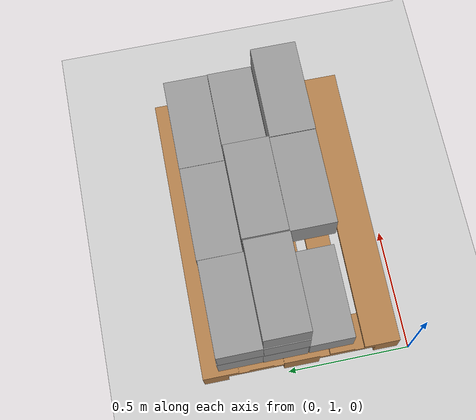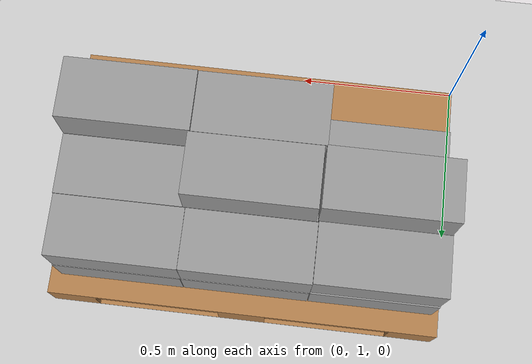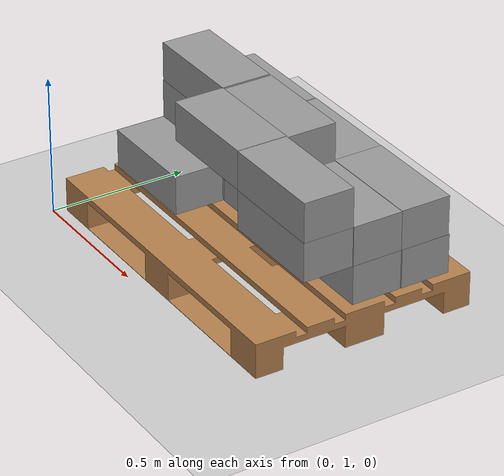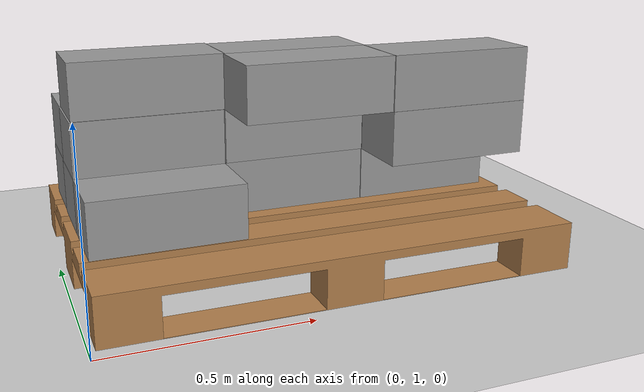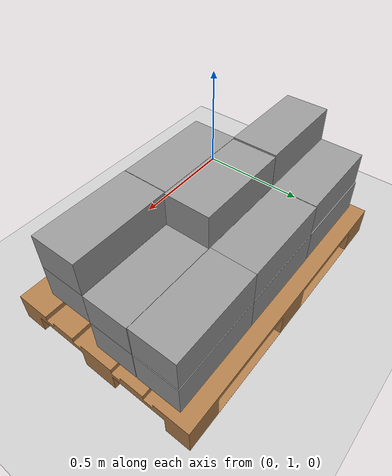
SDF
<sdf version="1.7">
 <world name="default">
  <model name="ground_plane">
   <static>1</static>
   <link name="link">
    <collision name="collision">
     <geometry><plane><normal>0 0 1</normal><size>100 100</size></plane></geometry>
     <surface>
      <contact><collide_bitmask>65535</collide_bitmask></contact>
      <friction><ode><mu>100</mu><mu2>50</mu2></ode></friction>
     </surface>
    </collision>
    <visual name="visual">
     <cast_shadows>0</cast_shadows>
     <geometry><plane><normal>0 0 1</normal><size>100 100</size></plane></geometry>
     <material>
      <script><uri>file://media/materials/scripts/gazebo.material</uri><name>Gazebo/Grey</name></script>
     </material>
    </visual>
   </link>
  </model>
  <model name="pedana">
   <link name="base">
    <inertial>
     <mass>25</mass>
     <inertia><ixx>1.36434</ixx><ixy>0</ixy><ixz>0</ixz><iyy>3.03101</iyy><iyz>0</iyz><izz>4.33333</izz></inertia>
    </inertial>
    <self_collide>1</self_collide>
    <visual name="visual">
     <pose>-0.6 -0.4 -0.083 0 -0 0</pose>
     <geometry>
      <mesh><uri>/home/marco/catkin_ws_iliad/src/iliad/meshes/pallet_base.stl</uri><scale>1 1 1</scale></mesh>
     </geometry>
     <material>
      <lighting>1</lighting>
      <script><uri>file://media/materials/scripts/gazebo.material</uri><name>Gazebo/Wood</name></script>
      <shader type="pixel"><normal_map>__default__</normal_map></shader>
      <ambient>0.3 0.3 0.3 1</ambient>
      <diffuse>0.7 0.7 0.7 1</diffuse>
      <specular>0.01 0.01 0.01 1</specular>
      <emissive>0 0 0 1</emissive>
     </material>
    </visual>
    <collision name="collision">
     <geometry><box><size>1.2 0.8 0.122</size></box></geometry>
     <surface>
      <friction>
       <ode><mu>1</mu><mu2>1</mu2><fdir1>0 0 0</fdir1><slip1>0</slip1><slip2>0</slip2></ode>
       <torsional>
        <coefficient>1</coefficient>
        <patch_radius>0</patch_radius>
        <surface_radius>0</surface_radius>
        <use_patch_radius>1</use_patch_radius>
        <ode><slip>0</slip></ode>
       </torsional>
      </friction>
      <bounce><restitution_coefficient>0</restitution_coefficient><threshold>1e+06</threshold></bounce>
      <contact>
       <collide_without_contact>0</collide_without_contact>
       <collide_without_contact_bitmask>1</collide_without_contact_bitmask>
       <collide_bitmask>1</collide_bitmask>
       <ode>
        <soft_cfm>0</soft_cfm>
        <soft_erp>0.2</soft_erp>
        <kp>1e+13</kp>
        <kd>1</kd>
        <max_vel>0.01</max_vel>
        <min_depth>0</min_depth>
       </ode>
       <bullet>
        <split_impulse>1</split_impulse>
        <split_impulse_penetration_threshold>-0.01</split_impulse_penetration_threshold>
        <soft_cfm>0</soft_cfm>
        <soft_erp>0.2</soft_erp>
        <kp>1e+13</kp>
        <kd>1</kd>
       </bullet>
      </contact>
     </surface>
    </collision>
   </link>
   <static>1</static>
   <pose>0.617422 1.44083 0.061 2.9e-05 -2e-05 -0.00384</pose>
  </model>
  <model name="box_38_18_14_6">
   <link name="link_0">
    <inertial>
     <mass>2.5</mass>
     <inertia>
      <ixx>0.0108332</ixx>
      <ixy>0</ixy>
      <ixz>0</ixz>
      <iyy>0.0341665</iyy>
      <iyz>0</iyz>
      <izz>0.0368332</izz>
     </inertia>
    </inertial>
    <visual name="visual">
     <geometry><box><size>0.38 0.18 0.14</size></box></geometry>
     <material>
      <lighting>1</lighting>
      <script><uri>file://media/materials/scripts/gazebo.material</uri><name>Gazebo/Grey</name></script>
      <shader type="pixel"><normal_map>__default__</normal_map></shader>
      <ambient>0.3 0.3 0.3 1</ambient>
      <diffuse>0.7 0.7 0.7 1</diffuse>
      <specular>0.01 0.01 0.01 1</specular>
      <emissive>0 0 0 1</emissive>
     </material>
    </visual>
    <collision name="collision">
     <geometry><box><size>0.38 0.18 0.14</size></box></geometry>
     <surface>
      <friction>
       <ode><mu>0.6</mu><mu2>0.6</mu2><fdir1>0 0 0</fdir1><slip1>0</slip1><slip2>0</slip2></ode>
       <torsional>
        <coefficient>1</coefficient>
        <patch_radius>0</patch_radius>
        <surface_radius>0</surface_radius>
        <use_patch_radius>1</use_patch_radius>
        <ode><slip>0</slip></ode>
       </torsional>
      </friction>
      <bounce><restitution_coefficient>0</restitution_coefficient><threshold>1e+06</threshold></bounce>
      <contact>
       <collide_without_contact>0</collide_without_contact>
       <collide_without_contact_bitmask>1</collide_without_contact_bitmask>
       <collide_bitmask>1</collide_bitmask>
       <ode>
        <soft_cfm>0</soft_cfm>
        <soft_erp>0.2</soft_erp>
        <kp>1e+13</kp>
        <kd>1</kd>
        <max_vel>0.01</max_vel>
        <min_depth>0.01</min_depth>
       </ode>
       <bullet>
        <split_impulse>1</split_impulse>
        <split_impulse_penetration_threshold>-0.01</split_impulse_penetration_threshold>
        <soft_cfm>0</soft_cfm>
        <soft_erp>0.2</soft_erp>
        <kp>1e+13</kp>
        <kd>1</kd>
       </bullet>
      </contact>
     </surface>
    </collision>
   </link>
   <static>1</static>
   <pose>0.228983 1.32157 0.191989 2.7e-05 -2.1e-05 0.000396</pose>
  </model>
  <model name="box_38_18_14_7">
   <link name="link_0">
    <inertial>
     <mass>2.5</mass>
     <inertia>
      <ixx>0.0108332</ixx>
      <ixy>0</ixy>
      <ixz>0</ixz>
      <iyy>0.0341665</iyy>
      <iyz>0</iyz>
      <izz>0.0368332</izz>
     </inertia>
    </inertial>
    <visual name="visual">
     <geometry><box><size>0.38 0.18 0.14</size></box></geometry>
     <material>
      <lighting>1</lighting>
      <script><uri>file://media/materials/scripts/gazebo.material</uri><name>Gazebo/Grey</name></script>
      <shader type="pixel"><normal_map>__default__</normal_map></shader>
      <ambient>0.3 0.3 0.3 1</ambient>
      <diffuse>0.7 0.7 0.7 1</diffuse>
      <specular>0.01 0.01 0.01 1</specular>
      <emissive>0 0 0 1</emissive>
     </material>
    </visual>
    <collision name="collision">
     <geometry><box><size>0.38 0.18 0.14</size></box></geometry>
     <surface>
      <friction>
       <ode><mu>0.6</mu><mu2>0.6</mu2><fdir1>0 0 0</fdir1><slip1>0</slip1><slip2>0</slip2></ode>
       <torsional>
        <coefficient>1</coefficient>
        <patch_radius>0</patch_radius>
        <surface_radius>0</surface_radius>
        <use_patch_radius>1</use_patch_radius>
        <ode><slip>0</slip></ode>
       </torsional>
      </friction>
      <bounce><restitution_coefficient>0</restitution_coefficient><threshold>1e+06</threshold></bounce>
      <contact>
       <collide_without_contact>0</collide_without_contact>
       <collide_without_contact_bitmask>1</collide_without_contact_bitmask>
       <collide_bitmask>1</collide_bitmask>
       <ode>
        <soft_cfm>0</soft_cfm>
        <soft_erp>0.2</soft_erp>
        <kp>1e+13</kp>
        <kd>1</kd>
        <max_vel>0.01</max_vel>
        <min_depth>0.01</min_depth>
       </ode>
       <bullet>
        <split_impulse>1</split_impulse>
        <split_impulse_penetration_threshold>-0.01</split_impulse_penetration_threshold>
        <soft_cfm>0</soft_cfm>
        <soft_erp>0.2</soft_erp>
        <kp>1e+13</kp>
        <kd>1</kd>
       </bullet>
      </contact>
     </surface>
    </collision>
   </link>
   <static>1</static>
   <pose>0.993277 1.5036 0.192009 2.8e-05 -2e-05 -0.000315</pose>
  </model>
  <model name="box_38_18_14_8">
   <link name="link_0">
    <inertial>
     <mass>2.5</mass>
     <inertia>
      <ixx>0.0108332</ixx>
      <ixy>0</ixy>
      <ixz>0</ixz>
      <iyy>0.0341665</iyy>
      <iyz>0</iyz>
      <izz>0.0368332</izz>
     </inertia>
    </inertial>
    <visual name="visual">
     <geometry><box><size>0.38 0.18 0.14</size></box></geometry>
     <material>
      <lighting>1</lighting>
      <script><uri>file://media/materials/scripts/gazebo.material</uri><name>Gazebo/Grey</name></script>
      <shader type="pixel"><normal_map>__default__</normal_map></shader>
      <ambient>0.3 0.3 0.3 1</ambient>
      <diffuse>0.7 0.7 0.7 1</diffuse>
      <specular>0.01 0.01 0.01 1</specular>
      <emissive>0 0 0 1</emissive>
     </material>
    </visual>
    <collision name="collision">
     <geometry><box><size>0.38 0.18 0.14</size></box></geometry>
     <surface>
      <friction>
       <ode><mu>0.6</mu><mu2>0.6</mu2><fdir1>0 0 0</fdir1><slip1>0</slip1><slip2>0</slip2></ode>
       <torsional>
        <coefficient>1</coefficient>
        <patch_radius>0</patch_radius>
        <surface_radius>0</surface_radius>
        <use_patch_radius>1</use_patch_radius>
        <ode><slip>0</slip></ode>
       </torsional>
      </friction>
      <bounce><restitution_coefficient>0</restitution_coefficient><threshold>1e+06</threshold></bounce>
      <contact>
       <collide_without_contact>0</collide_without_contact>
       <collide_without_contact_bitmask>1</collide_without_contact_bitmask>
       <collide_bitmask>1</collide_bitmask>
       <ode>
        <soft_cfm>0</soft_cfm>
        <soft_erp>0.2</soft_erp>
        <kp>1e+13</kp>
        <kd>1</kd>
        <max_vel>0.01</max_vel>
        <min_depth>0.01</min_depth>
       </ode>
       <bullet>
        <split_impulse>1</split_impulse>
        <split_impulse_penetration_threshold>-0.01</split_impulse_penetration_threshold>
        <soft_cfm>0</soft_cfm>
        <soft_erp>0.2</soft_erp>
        <kp>1e+13</kp>
        <kd>1</kd>
       </bullet>
      </contact>
     </surface>
    </collision>
   </link>
   <static>1</static>
   <pose>0.611731 1.50421 0.192002 2.6e-05 -2e-05 -3.2e-05</pose>
  </model>
  <model name="box_38_18_14_9">
   <link name="link_0">
    <inertial>
     <mass>2.5</mass>
     <inertia>
      <ixx>0.0108332</ixx>
      <ixy>0</ixy>
      <ixz>0</ixz>
      <iyy>0.0341665</iyy>
      <iyz>0</iyz>
      <izz>0.0368332</izz>
     </inertia>
    </inertial>
    <visual name="visual">
     <geometry><box><size>0.38 0.18 0.14</size></box></geometry>
     <material>
      <lighting>1</lighting>
      <script><uri>file://media/materials/scripts/gazebo.material</uri><name>Gazebo/Grey</name></script>
      <shader type="pixel"><normal_map>__default__</normal_map></shader>
      <ambient>0.3 0.3 0.3 1</ambient>
      <diffuse>0.7 0.7 0.7 1</diffuse>
      <specular>0.01 0.01 0.01 1</specular>
      <emissive>0 0 0 1</emissive>
     </material>
    </visual>
    <collision name="collision">
     <geometry><box><size>0.38 0.18 0.14</size></box></geometry>
     <surface>
      <friction>
       <ode><mu>0.6</mu><mu2>0.6</mu2><fdir1>0 0 0</fdir1><slip1>0</slip1><slip2>0</slip2></ode>
       <torsional>
        <coefficient>1</coefficient>
        <patch_radius>0</patch_radius>
        <surface_radius>0</surface_radius>
        <use_patch_radius>1</use_patch_radius>
        <ode><slip>0</slip></ode>
       </torsional>
      </friction>
      <bounce><restitution_coefficient>0</restitution_coefficient><threshold>1e+06</threshold></bounce>
      <contact>
       <collide_without_contact>0</collide_without_contact>
       <collide_without_contact_bitmask>1</collide_without_contact_bitmask>
       <collide_bitmask>1</collide_bitmask>
       <ode>
        <soft_cfm>0</soft_cfm>
        <soft_erp>0.2</soft_erp>
        <kp>1e+13</kp>
        <kd>1</kd>
        <max_vel>0.01</max_vel>
        <min_depth>0.01</min_depth>
       </ode>
       <bullet>
        <split_impulse>1</split_impulse>
        <split_impulse_penetration_threshold>-0.01</split_impulse_penetration_threshold>
        <soft_cfm>0</soft_cfm>
        <soft_erp>0.2</soft_erp>
        <kp>1e+13</kp>
        <kd>1</kd>
       </bullet>
      </contact>
     </surface>
    </collision>
   </link>
   <static>1</static>
   <pose>0.228513 1.50611 0.191994 2.9e-05 -2e-05 0.000472</pose>
  </model>
  <model name="box_38_18_14_10">
   <link name="link_0">
    <inertial>
     <mass>2.5</mass>
     <inertia>
      <ixx>0.0108332</ixx>
      <ixy>0</ixy>
      <ixz>0</ixz>
      <iyy>0.0341665</iyy>
      <iyz>0</iyz>
      <izz>0.0368332</izz>
     </inertia>
    </inertial>
    <visual name="visual">
     <geometry><box><size>0.38 0.18 0.14</size></box></geometry>
     <material>
      <lighting>1</lighting>
      <script><uri>file://media/materials/scripts/gazebo.material</uri><name>Gazebo/Grey</name></script>
      <shader type="pixel"><normal_map>__default__</normal_map></shader>
      <ambient>0.3 0.3 0.3 1</ambient>
      <diffuse>0.7 0.7 0.7 1</diffuse>
      <specular>0.01 0.01 0.01 1</specular>
      <emissive>0 0 0 1</emissive>
     </material>
    </visual>
    <collision name="collision">
     <geometry><box><size>0.38 0.18 0.14</size></box></geometry>
     <surface>
      <friction>
       <ode><mu>0.6</mu><mu2>0.6</mu2><fdir1>0 0 0</fdir1><slip1>0</slip1><slip2>0</slip2></ode>
       <torsional>
        <coefficient>1</coefficient>
        <patch_radius>0</patch_radius>
        <surface_radius>0</surface_radius>
        <use_patch_radius>1</use_patch_radius>
        <ode><slip>0</slip></ode>
       </torsional>
      </friction>
      <bounce><restitution_coefficient>0</restitution_coefficient><threshold>1e+06</threshold></bounce>
      <contact>
       <collide_without_contact>0</collide_without_contact>
       <collide_without_contact_bitmask>1</collide_without_contact_bitmask>
       <collide_bitmask>1</collide_bitmask>
       <ode>
        <soft_cfm>0</soft_cfm>
        <soft_erp>0.2</soft_erp>
        <kp>1e+13</kp>
        <kd>1</kd>
        <max_vel>0.01</max_vel>
        <min_depth>0.01</min_depth>
       </ode>
       <bullet>
        <split_impulse>1</split_impulse>
        <split_impulse_penetration_threshold>-0.01</split_impulse_penetration_threshold>
        <soft_cfm>0</soft_cfm>
        <soft_erp>0.2</soft_erp>
        <kp>1e+13</kp>
        <kd>1</kd>
       </bullet>
      </contact>
     </surface>
    </collision>
   </link>
   <static>1</static>
   <pose>0.993832 1.68679 0.192015 2.6e-05 -2e-05 0.000237</pose>
  </model>
  <model name="box_38_18_14_11">
   <link name="link_0">
    <inertial>
     <mass>2.5</mass>
     <inertia>
      <ixx>0.0108332</ixx>
      <ixy>0</ixy>
      <ixz>0</ixz>
      <iyy>0.0341665</iyy>
      <iyz>0</iyz>
      <izz>0.0368332</izz>
     </inertia>
    </inertial>
    <visual name="visual">
     <geometry><box><size>0.38 0.18 0.14</size></box></geometry>
     <material>
      <lighting>1</lighting>
      <script><uri>file://media/materials/scripts/gazebo.material</uri><name>Gazebo/Grey</name></script>
      <shader type="pixel"><normal_map>__default__</normal_map></shader>
      <ambient>0.3 0.3 0.3 1</ambient>
      <diffuse>0.7 0.7 0.7 1</diffuse>
      <specular>0.01 0.01 0.01 1</specular>
      <emissive>0 0 0 1</emissive>
     </material>
    </visual>
    <collision name="collision">
     <geometry><box><size>0.38 0.18 0.14</size></box></geometry>
     <surface>
      <friction>
       <ode><mu>0.6</mu><mu2>0.6</mu2><fdir1>0 0 0</fdir1><slip1>0</slip1><slip2>0</slip2></ode>
       <torsional>
        <coefficient>1</coefficient>
        <patch_radius>0</patch_radius>
        <surface_radius>0</surface_radius>
        <use_patch_radius>1</use_patch_radius>
        <ode><slip>0</slip></ode>
       </torsional>
      </friction>
      <bounce><restitution_coefficient>0</restitution_coefficient><threshold>1e+06</threshold></bounce>
      <contact>
       <collide_without_contact>0</collide_without_contact>
       <collide_without_contact_bitmask>1</collide_without_contact_bitmask>
       <collide_bitmask>1</collide_bitmask>
       <ode>
        <soft_cfm>0</soft_cfm>
        <soft_erp>0.2</soft_erp>
        <kp>1e+13</kp>
        <kd>1</kd>
        <max_vel>0.01</max_vel>
        <min_depth>0.01</min_depth>
       </ode>
       <bullet>
        <split_impulse>1</split_impulse>
        <split_impulse_penetration_threshold>-0.01</split_impulse_penetration_threshold>
        <soft_cfm>0</soft_cfm>
        <soft_erp>0.2</soft_erp>
        <kp>1e+13</kp>
        <kd>1</kd>
       </bullet>
      </contact>
     </surface>
    </collision>
   </link>
   <static>1</static>
   <pose>0.61229 1.68672 0.192007 2.9e-05 -2.3e-05 -0.001084</pose>
  </model>
  <model name="box_38_18_14_12">
   <link name="link_0">
    <inertial>
     <mass>2.5</mass>
     <inertia>
      <ixx>0.0108332</ixx>
      <ixy>0</ixy>
      <ixz>0</ixz>
      <iyy>0.0341665</iyy>
      <iyz>0</iyz>
      <izz>0.0368332</izz>
     </inertia>
    </inertial>
    <visual name="visual">
     <geometry><box><size>0.38 0.18 0.14</size></box></geometry>
     <material>
      <lighting>1</lighting>
      <script><uri>file://media/materials/scripts/gazebo.material</uri><name>Gazebo/Grey</name></script>
      <shader type="pixel"><normal_map>__default__</normal_map></shader>
      <ambient>0.3 0.3 0.3 1</ambient>
      <diffuse>0.7 0.7 0.7 1</diffuse>
      <specular>0.01 0.01 0.01 1</specular>
      <emissive>0 0 0 1</emissive>
     </material>
    </visual>
    <collision name="collision">
     <geometry><box><size>0.38 0.18 0.14</size></box></geometry>
     <surface>
      <friction>
       <ode><mu>0.6</mu><mu2>0.6</mu2><fdir1>0 0 0</fdir1><slip1>0</slip1><slip2>0</slip2></ode>
       <torsional>
        <coefficient>1</coefficient>
        <patch_radius>0</patch_radius>
        <surface_radius>0</surface_radius>
        <use_patch_radius>1</use_patch_radius>
        <ode><slip>0</slip></ode>
       </torsional>
      </friction>
      <bounce><restitution_coefficient>0</restitution_coefficient><threshold>1e+06</threshold></bounce>
      <contact>
       <collide_without_contact>0</collide_without_contact>
       <collide_without_contact_bitmask>1</collide_without_contact_bitmask>
       <collide_bitmask>1</collide_bitmask>
       <ode>
        <soft_cfm>0</soft_cfm>
        <soft_erp>0.2</soft_erp>
        <kp>1e+13</kp>
        <kd>1</kd>
        <max_vel>0.01</max_vel>
        <min_depth>0.01</min_depth>
       </ode>
       <bullet>
        <split_impulse>1</split_impulse>
        <split_impulse_penetration_threshold>-0.01</split_impulse_penetration_threshold>
        <soft_cfm>0</soft_cfm>
        <soft_erp>0.2</soft_erp>
        <kp>1e+13</kp>
        <kd>1</kd>
       </bullet>
      </contact>
     </surface>
    </collision>
   </link>
   <static>1</static>
   <pose>0.229855 1.6861 0.191999 2.7e-05 -2.1e-05 0.000476</pose>
  </model>
  <model name="box_38_18_14_18">
   <link name="link_0">
    <inertial>
     <mass>2.5</mass>
     <inertia>
      <ixx>0.0108332</ixx>
      <ixy>0</ixy>
      <ixz>0</ixz>
      <iyy>0.0341665</iyy>
      <iyz>0</iyz>
      <izz>0.0368332</izz>
     </inertia>
    </inertial>
    <visual name="visual">
     <geometry><box><size>0.38 0.18 0.14</size></box></geometry>
     <material>
      <lighting>1</lighting>
      <script><uri>file://media/materials/scripts/gazebo.material</uri><name>Gazebo/Grey</name></script>
      <shader type="pixel"><normal_map>__default__</normal_map></shader>
      <ambient>0.3 0.3 0.3 1</ambient>
      <diffuse>0.7 0.7 0.7 1</diffuse>
      <specular>0.01 0.01 0.01 1</specular>
      <emissive>0 0 0 1</emissive>
     </material>
    </visual>
    <collision name="collision">
     <geometry><box><size>0.38 0.18 0.14</size></box></geometry>
     <surface>
      <friction>
       <ode><mu>0.6</mu><mu2>0.6</mu2><fdir1>0 0 0</fdir1><slip1>0</slip1><slip2>0</slip2></ode>
       <torsional>
        <coefficient>1</coefficient>
        <patch_radius>0</patch_radius>
        <surface_radius>0</surface_radius>
        <use_patch_radius>1</use_patch_radius>
        <ode><slip>0</slip></ode>
       </torsional>
      </friction>
      <bounce><restitution_coefficient>0</restitution_coefficient><threshold>1e+06</threshold></bounce>
      <contact>
       <collide_without_contact>0</collide_without_contact>
       <collide_without_contact_bitmask>1</collide_without_contact_bitmask>
       <collide_bitmask>1</collide_bitmask>
       <ode>
        <soft_cfm>0</soft_cfm>
        <soft_erp>0.2</soft_erp>
        <kp>1e+13</kp>
        <kd>1</kd>
        <max_vel>0.01</max_vel>
        <min_depth>0.01</min_depth>
       </ode>
       <bullet>
        <split_impulse>1</split_impulse>
        <split_impulse_penetration_threshold>-0.01</split_impulse_penetration_threshold>
        <soft_cfm>0</soft_cfm>
        <soft_erp>0.2</soft_erp>
        <kp>1e+13</kp>
        <kd>1</kd>
       </bullet>
      </contact>
     </surface>
    </collision>
   </link>
   <static>1</static>
   <pose>0.992286 1.32173 0.331955 0.000384 -6e-05 -0.000365</pose>
  </model>
  <model name="box_38_18_14_19">
   <link name="link_0">
    <inertial>
     <mass>2.5</mass>
     <inertia>
      <ixx>0.0108332</ixx>
      <ixy>0</ixy>
      <ixz>0</ixz>
      <iyy>0.0341665</iyy>
      <iyz>0</iyz>
      <izz>0.0368332</izz>
     </inertia>
    </inertial>
    <visual name="visual">
     <geometry><box><size>0.38 0.18 0.14</size></box></geometry>
     <material>
      <lighting>1</lighting>
      <script><uri>file://media/materials/scripts/gazebo.material</uri><name>Gazebo/Grey</name></script>
      <shader type="pixel"><normal_map>__default__</normal_map></shader>
      <ambient>0.3 0.3 0.3 1</ambient>
      <diffuse>0.7 0.7 0.7 1</diffuse>
      <specular>0.01 0.01 0.01 1</specular>
      <emissive>0 0 0 1</emissive>
     </material>
    </visual>
    <collision name="collision">
     <geometry><box><size>0.38 0.18 0.14</size></box></geometry>
     <surface>
      <friction>
       <ode><mu>0.6</mu><mu2>0.6</mu2><fdir1>0 0 0</fdir1><slip1>0</slip1><slip2>0</slip2></ode>
       <torsional>
        <coefficient>1</coefficient>
        <patch_radius>0</patch_radius>
        <surface_radius>0</surface_radius>
        <use_patch_radius>1</use_patch_radius>
        <ode><slip>0</slip></ode>
       </torsional>
      </friction>
      <bounce><restitution_coefficient>0</restitution_coefficient><threshold>1e+06</threshold></bounce>
      <contact>
       <collide_without_contact>0</collide_without_contact>
       <collide_without_contact_bitmask>1</collide_without_contact_bitmask>
       <collide_bitmask>1</collide_bitmask>
       <ode>
        <soft_cfm>0</soft_cfm>
        <soft_erp>0.2</soft_erp>
        <kp>1e+13</kp>
        <kd>1</kd>
        <max_vel>0.01</max_vel>
        <min_depth>0.01</min_depth>
       </ode>
       <bullet>
        <split_impulse>1</split_impulse>
        <split_impulse_penetration_threshold>-0.01</split_impulse_penetration_threshold>
        <soft_cfm>0</soft_cfm>
        <soft_erp>0.2</soft_erp>
        <kp>1e+13</kp>
        <kd>1</kd>
       </bullet>
      </contact>
     </surface>
    </collision>
   </link>
   <static>1</static>
   <pose>0.612685 1.50319 0.331879 -0.000282 1e-05 6e-05</pose>
  </model>
  <model name="box_38_18_14_20">
   <link name="link_0">
    <inertial>
     <mass>2.5</mass>
     <inertia>
      <ixx>0.0108332</ixx>
      <ixy>0</ixy>
      <ixz>0</ixz>
      <iyy>0.0341665</iyy>
      <iyz>0</iyz>
      <izz>0.0368332</izz>
     </inertia>
    </inertial>
    <visual name="visual">
     <geometry><box><size>0.38 0.18 0.14</size></box></geometry>
     <material>
      <lighting>1</lighting>
      <script><uri>file://media/materials/scripts/gazebo.material</uri><name>Gazebo/Grey</name></script>
      <shader type="pixel"><normal_map>__default__</normal_map></shader>
      <ambient>0.3 0.3 0.3 1</ambient>
      <diffuse>0.7 0.7 0.7 1</diffuse>
      <specular>0.01 0.01 0.01 1</specular>
      <emissive>0 0 0 1</emissive>
     </material>
    </visual>
    <collision name="collision">
     <geometry><box><size>0.38 0.18 0.14</size></box></geometry>
     <surface>
      <friction>
       <ode><mu>0.6</mu><mu2>0.6</mu2><fdir1>0 0 0</fdir1><slip1>0</slip1><slip2>0</slip2></ode>
       <torsional>
        <coefficient>1</coefficient>
        <patch_radius>0</patch_radius>
        <surface_radius>0</surface_radius>
        <use_patch_radius>1</use_patch_radius>
        <ode><slip>0</slip></ode>
       </torsional>
      </friction>
      <bounce><restitution_coefficient>0</restitution_coefficient><threshold>1e+06</threshold></bounce>
      <contact>
       <collide_without_contact>0</collide_without_contact>
       <collide_without_contact_bitmask>1</collide_without_contact_bitmask>
       <collide_bitmask>1</collide_bitmask>
       <ode>
        <soft_cfm>0</soft_cfm>
        <soft_erp>0.2</soft_erp>
        <kp>1e+13</kp>
        <kd>1</kd>
        <max_vel>0.01</max_vel>
        <min_depth>0.01</min_depth>
       </ode>
       <bullet>
        <split_impulse>1</split_impulse>
        <split_impulse_penetration_threshold>-0.01</split_impulse_penetration_threshold>
        <soft_cfm>0</soft_cfm>
        <soft_erp>0.2</soft_erp>
        <kp>1e+13</kp>
        <kd>1</kd>
       </bullet>
      </contact>
     </surface>
    </collision>
   </link>
   <static>1</static>
   <pose>0.229312 1.50164 0.331982 0.000115 -5.1e-05 0.000608</pose>
  </model>
  <model name="box_38_18_14_21">
   <link name="link_0">
    <inertial>
     <mass>2.5</mass>
     <inertia>
      <ixx>0.0108332</ixx>
      <ixy>0</ixy>
      <ixz>0</ixz>
      <iyy>0.0341665</iyy>
      <iyz>0</iyz>
      <izz>0.0368332</izz>
     </inertia>
    </inertial>
    <visual name="visual">
     <geometry><box><size>0.38 0.18 0.14</size></box></geometry>
     <material>
      <lighting>1</lighting>
      <script><uri>file://media/materials/scripts/gazebo.material</uri><name>Gazebo/Grey</name></script>
      <shader type="pixel"><normal_map>__default__</normal_map></shader>
      <ambient>0.3 0.3 0.3 1</ambient>
      <diffuse>0.7 0.7 0.7 1</diffuse>
      <specular>0.01 0.01 0.01 1</specular>
      <emissive>0 0 0 1</emissive>
     </material>
    </visual>
    <collision name="collision">
     <geometry><box><size>0.38 0.18 0.14</size></box></geometry>
     <surface>
      <friction>
       <ode><mu>0.6</mu><mu2>0.6</mu2><fdir1>0 0 0</fdir1><slip1>0</slip1><slip2>0</slip2></ode>
       <torsional>
        <coefficient>1</coefficient>
        <patch_radius>0</patch_radius>
        <surface_radius>0</surface_radius>
        <use_patch_radius>1</use_patch_radius>
        <ode><slip>0</slip></ode>
       </torsional>
      </friction>
      <bounce><restitution_coefficient>0</restitution_coefficient><threshold>1e+06</threshold></bounce>
      <contact>
       <collide_without_contact>0</collide_without_contact>
       <collide_without_contact_bitmask>1</collide_without_contact_bitmask>
       <collide_bitmask>1</collide_bitmask>
       <ode>
        <soft_cfm>0</soft_cfm>
        <soft_erp>0.2</soft_erp>
        <kp>1e+13</kp>
        <kd>1</kd>
        <max_vel>0.01</max_vel>
        <min_depth>0.01</min_depth>
       </ode>
       <bullet>
        <split_impulse>1</split_impulse>
        <split_impulse_penetration_threshold>-0.01</split_impulse_penetration_threshold>
        <soft_cfm>0</soft_cfm>
        <soft_erp>0.2</soft_erp>
        <kp>1e+13</kp>
        <kd>1</kd>
       </bullet>
      </contact>
     </surface>
    </collision>
   </link>
   <static>1</static>
   <pose>0.993032 1.50351 0.331903 9e-06 -2.3e-05 0.00038</pose>
  </model>
  <model name="box_38_18_14_22">
   <link name="link_0">
    <inertial>
     <mass>2.5</mass>
     <inertia>
      <ixx>0.0108332</ixx>
      <ixy>0</ixy>
      <ixz>0</ixz>
      <iyy>0.0341665</iyy>
      <iyz>0</iyz>
      <izz>0.0368332</izz>
     </inertia>
    </inertial>
    <visual name="visual">
     <geometry><box><size>0.38 0.18 0.14</size></box></geometry>
     <material>
      <lighting>1</lighting>
      <script><uri>file://media/materials/scripts/gazebo.material</uri><name>Gazebo/Grey</name></script>
      <shader type="pixel"><normal_map>__default__</normal_map></shader>
      <ambient>0.3 0.3 0.3 1</ambient>
      <diffuse>0.7 0.7 0.7 1</diffuse>
      <specular>0.01 0.01 0.01 1</specular>
      <emissive>0 0 0 1</emissive>
     </material>
    </visual>
    <collision name="collision">
     <geometry><box><size>0.38 0.18 0.14</size></box></geometry>
     <surface>
      <friction>
       <ode><mu>0.6</mu><mu2>0.6</mu2><fdir1>0 0 0</fdir1><slip1>0</slip1><slip2>0</slip2></ode>
       <torsional>
        <coefficient>1</coefficient>
        <patch_radius>0</patch_radius>
        <surface_radius>0</surface_radius>
        <use_patch_radius>1</use_patch_radius>
        <ode><slip>0</slip></ode>
       </torsional>
      </friction>
      <bounce><restitution_coefficient>0</restitution_coefficient><threshold>1e+06</threshold></bounce>
      <contact>
       <collide_without_contact>0</collide_without_contact>
       <collide_without_contact_bitmask>1</collide_without_contact_bitmask>
       <collide_bitmask>1</collide_bitmask>
       <ode>
        <soft_cfm>0</soft_cfm>
        <soft_erp>0.2</soft_erp>
        <kp>1e+13</kp>
        <kd>1</kd>
        <max_vel>0.01</max_vel>
        <min_depth>0.01</min_depth>
       </ode>
       <bullet>
        <split_impulse>1</split_impulse>
        <split_impulse_penetration_threshold>-0.01</split_impulse_penetration_threshold>
        <soft_cfm>0</soft_cfm>
        <soft_erp>0.2</soft_erp>
        <kp>1e+13</kp>
        <kd>1</kd>
       </bullet>
      </contact>
     </surface>
    </collision>
   </link>
   <static>1</static>
   <pose>0.61099 1.68441 0.331077 0.000642 -0.000878 -0.000825</pose>
  </model>
  <model name="box_38_18_14_23">
   <link name="link_0">
    <inertial>
     <mass>2.5</mass>
     <inertia>
      <ixx>0.0108332</ixx>
      <ixy>0</ixy>
      <ixz>0</ixz>
      <iyy>0.0341665</iyy>
      <iyz>0</iyz>
      <izz>0.0368332</izz>
     </inertia>
    </inertial>
    <visual name="visual">
     <geometry><box><size>0.38 0.18 0.14</size></box></geometry>
     <material>
      <lighting>1</lighting>
      <script><uri>file://media/materials/scripts/gazebo.material</uri><name>Gazebo/Grey</name></script>
      <shader type="pixel"><normal_map>__default__</normal_map></shader>
      <ambient>0.3 0.3 0.3 1</ambient>
      <diffuse>0.7 0.7 0.7 1</diffuse>
      <specular>0.01 0.01 0.01 1</specular>
      <emissive>0 0 0 1</emissive>
     </material>
    </visual>
    <collision name="collision">
     <geometry><box><size>0.38 0.18 0.14</size></box></geometry>
     <surface>
      <friction>
       <ode><mu>0.6</mu><mu2>0.6</mu2><fdir1>0 0 0</fdir1><slip1>0</slip1><slip2>0</slip2></ode>
       <torsional>
        <coefficient>1</coefficient>
        <patch_radius>0</patch_radius>
        <surface_radius>0</surface_radius>
        <use_patch_radius>1</use_patch_radius>
        <ode><slip>0</slip></ode>
       </torsional>
      </friction>
      <bounce><restitution_coefficient>0</restitution_coefficient><threshold>1e+06</threshold></bounce>
      <contact>
       <collide_without_contact>0</collide_without_contact>
       <collide_without_contact_bitmask>1</collide_without_contact_bitmask>
       <collide_bitmask>1</collide_bitmask>
       <ode>
        <soft_cfm>0</soft_cfm>
        <soft_erp>0.2</soft_erp>
        <kp>1e+13</kp>
        <kd>1</kd>
        <max_vel>0.01</max_vel>
        <min_depth>0.01</min_depth>
       </ode>
       <bullet>
        <split_impulse>1</split_impulse>
        <split_impulse_penetration_threshold>-0.01</split_impulse_penetration_threshold>
        <soft_cfm>0</soft_cfm>
        <soft_erp>0.2</soft_erp>
        <kp>1e+13</kp>
        <kd>1</kd>
       </bullet>
      </contact>
     </surface>
    </collision>
   </link>
   <static>1</static>
   <pose>0.99108 1.68467 0.331973 2.9e-05 0.000187 -0.000653</pose>
  </model>
  <model name="box_38_18_14_24">
   <link name="link_0">
    <inertial>
     <mass>2.5</mass>
     <inertia>
      <ixx>0.0108332</ixx>
      <ixy>0</ixy>
      <ixz>0</ixz>
      <iyy>0.0341665</iyy>
      <iyz>0</iyz>
      <izz>0.0368332</izz>
     </inertia>
    </inertial>
    <visual name="visual">
     <geometry><box><size>0.38 0.18 0.14</size></box></geometry>
     <material>
      <lighting>1</lighting>
      <script><uri>file://media/materials/scripts/gazebo.material</uri><name>Gazebo/Grey</name></script>
      <shader type="pixel"><normal_map>__default__</normal_map></shader>
      <ambient>0.3 0.3 0.3 1</ambient>
      <diffuse>0.7 0.7 0.7 1</diffuse>
      <specular>0.01 0.01 0.01 1</specular>
      <emissive>0 0 0 1</emissive>
     </material>
    </visual>
    <collision name="collision">
     <geometry><box><size>0.38 0.18 0.14</size></box></geometry>
     <surface>
      <friction>
       <ode><mu>0.6</mu><mu2>0.6</mu2><fdir1>0 0 0</fdir1><slip1>0</slip1><slip2>0</slip2></ode>
       <torsional>
        <coefficient>1</coefficient>
        <patch_radius>0</patch_radius>
        <surface_radius>0</surface_radius>
        <use_patch_radius>1</use_patch_radius>
        <ode><slip>0</slip></ode>
       </torsional>
      </friction>
      <bounce><restitution_coefficient>0</restitution_coefficient><threshold>1e+06</threshold></bounce>
      <contact>
       <collide_without_contact>0</collide_without_contact>
       <collide_without_contact_bitmask>1</collide_without_contact_bitmask>
       <collide_bitmask>1</collide_bitmask>
       <ode>
        <soft_cfm>0</soft_cfm>
        <soft_erp>0.2</soft_erp>
        <kp>1e+13</kp>
        <kd>1</kd>
        <max_vel>0.01</max_vel>
        <min_depth>0.01</min_depth>
       </ode>
       <bullet>
        <split_impulse>1</split_impulse>
        <split_impulse_penetration_threshold>-0.01</split_impulse_penetration_threshold>
        <soft_cfm>0</soft_cfm>
        <soft_erp>0.2</soft_erp>
        <kp>1e+13</kp>
        <kd>1</kd>
       </bullet>
      </contact>
     </surface>
    </collision>
   </link>
   <static>1</static>
   <pose>0.230319 1.68159 0.331994 1e-05 -4.5e-05 0.000836</pose>
  </model>
  <model name="box_38_18_14_25">
   <link name="link_0">
    <inertial>
     <mass>2.5</mass>
     <inertia>
      <ixx>0.0108332</ixx>
      <ixy>0</ixy>
      <ixz>0</ixz>
      <iyy>0.0341665</iyy>
      <iyz>0</iyz>
      <izz>0.0368332</izz>
     </inertia>
    </inertial>
    <visual name="visual">
     <geometry><box><size>0.38 0.18 0.14</size></box></geometry>
     <material>
      <lighting>1</lighting>
      <script><uri>file://media/materials/scripts/gazebo.material</uri><name>Gazebo/Grey</name></script>
      <shader type="pixel"><normal_map>__default__</normal_map></shader>
      <ambient>0.3 0.3 0.3 1</ambient>
      <diffuse>0.7 0.7 0.7 1</diffuse>
      <specular>0.01 0.01 0.01 1</specular>
      <emissive>0 0 0 1</emissive>
     </material>
    </visual>
    <collision name="collision">
     <geometry><box><size>0.38 0.18 0.14</size></box></geometry>
     <surface>
      <friction>
       <ode><mu>0.6</mu><mu2>0.6</mu2><fdir1>0 0 0</fdir1><slip1>0</slip1><slip2>0</slip2></ode>
       <torsional>
        <coefficient>1</coefficient>
        <patch_radius>0</patch_radius>
        <surface_radius>0</surface_radius>
        <use_patch_radius>1</use_patch_radius>
        <ode><slip>0</slip></ode>
       </torsional>
      </friction>
      <bounce><restitution_coefficient>0</restitution_coefficient><threshold>1e+06</threshold></bounce>
      <contact>
       <collide_without_contact>0</collide_without_contact>
       <collide_without_contact_bitmask>1</collide_without_contact_bitmask>
       <collide_bitmask>1</collide_bitmask>
       <ode>
        <soft_cfm>0</soft_cfm>
        <soft_erp>0.2</soft_erp>
        <kp>1e+13</kp>
        <kd>1</kd>
        <max_vel>0.01</max_vel>
        <min_depth>0.01</min_depth>
       </ode>
       <bullet>
        <split_impulse>1</split_impulse>
        <split_impulse_penetration_threshold>-0.01</split_impulse_penetration_threshold>
        <soft_cfm>0</soft_cfm>
        <soft_erp>0.2</soft_erp>
        <kp>1e+13</kp>
        <kd>1</kd>
       </bullet>
      </contact>
     </surface>
    </collision>
   </link>
   <static>1</static>
   <pose>0.610776 1.3237 0.471917 0.000172 0.000213 0.000795</pose>
  </model>
  <model name="box_38_18_14_26">
   <link name="link_0">
    <inertial>
     <mass>2.5</mass>
     <inertia>
      <ixx>0.0108332</ixx>
      <ixy>0</ixy>
      <ixz>0</ixz>
      <iyy>0.0341665</iyy>
      <iyz>0</iyz>
      <izz>0.0368332</izz>
     </inertia>
    </inertial>
    <visual name="visual">
     <geometry><box><size>0.38 0.18 0.14</size></box></geometry>
     <material>
      <lighting>1</lighting>
      <script><uri>file://media/materials/scripts/gazebo.material</uri><name>Gazebo/Grey</name></script>
      <shader type="pixel"><normal_map>__default__</normal_map></shader>
      <ambient>0.3 0.3 0.3 1</ambient>
      <diffuse>0.7 0.7 0.7 1</diffuse>
      <specular>0.01 0.01 0.01 1</specular>
      <emissive>0 0 0 1</emissive>
     </material>
    </visual>
    <collision name="collision">
     <geometry><box><size>0.38 0.18 0.14</size></box></geometry>
     <surface>
      <friction>
       <ode><mu>0.6</mu><mu2>0.6</mu2><fdir1>0 0 0</fdir1><slip1>0</slip1><slip2>0</slip2></ode>
       <torsional>
        <coefficient>1</coefficient>
        <patch_radius>0</patch_radius>
        <surface_radius>0</surface_radius>
        <use_patch_radius>1</use_patch_radius>
        <ode><slip>0</slip></ode>
       </torsional>
      </friction>
      <bounce><restitution_coefficient>0</restitution_coefficient><threshold>1e+06</threshold></bounce>
      <contact>
       <collide_without_contact>0</collide_without_contact>
       <collide_without_contact_bitmask>1</collide_without_contact_bitmask>
       <collide_bitmask>1</collide_bitmask>
       <ode>
        <soft_cfm>0</soft_cfm>
        <soft_erp>0.2</soft_erp>
        <kp>1e+13</kp>
        <kd>1</kd>
        <max_vel>0.01</max_vel>
        <min_depth>0.01</min_depth>
       </ode>
       <bullet>
        <split_impulse>1</split_impulse>
        <split_impulse_penetration_threshold>-0.01</split_impulse_penetration_threshold>
        <soft_cfm>0</soft_cfm>
        <soft_erp>0.2</soft_erp>
        <kp>1e+13</kp>
        <kd>1</kd>
       </bullet>
      </contact>
     </surface>
    </collision>
   </link>
   <static>1</static>
   <pose>0.99247 1.32241 0.471902 0.000191 -4.7e-05 -0.000241</pose>
  </model>
  <model name="box_38_18_14_33">
   <link name="link_0">
    <inertial>
     <mass>2.5</mass>
     <inertia>
      <ixx>0.0108332</ixx>
      <ixy>0</ixy>
      <ixz>0</ixz>
      <iyy>0.0341665</iyy>
      <iyz>0</iyz>
      <izz>0.0368332</izz>
     </inertia>
    </inertial>
    <visual name="visual">
     <geometry><box><size>0.38 0.18 0.14</size></box></geometry>
     <material>
      <lighting>1</lighting>
      <script><uri>file://media/materials/scripts/gazebo.material</uri><name>Gazebo/Grey</name></script>
      <shader type="pixel"><normal_map>__default__</normal_map></shader>
      <ambient>0.3 0.3 0.3 1</ambient>
      <diffuse>0.7 0.7 0.7 1</diffuse>
      <specular>0.01 0.01 0.01 1</specular>
      <emissive>0 0 0 1</emissive>
     </material>
    </visual>
    <collision name="collision">
     <geometry><box><size>0.38 0.18 0.14</size></box></geometry>
     <surface>
      <friction>
       <ode><mu>0.6</mu><mu2>0.6</mu2><fdir1>0 0 0</fdir1><slip1>0</slip1><slip2>0</slip2></ode>
       <torsional>
        <coefficient>1</coefficient>
        <patch_radius>0</patch_radius>
        <surface_radius>0</surface_radius>
        <use_patch_radius>1</use_patch_radius>
        <ode><slip>0</slip></ode>
       </torsional>
      </friction>
      <bounce><restitution_coefficient>0</restitution_coefficient><threshold>1e+06</threshold></bounce>
      <contact>
       <collide_without_contact>0</collide_without_contact>
       <collide_without_contact_bitmask>1</collide_without_contact_bitmask>
       <collide_bitmask>1</collide_bitmask>
       <ode>
        <soft_cfm>0</soft_cfm>
        <soft_erp>0.2</soft_erp>
        <kp>1e+13</kp>
        <kd>1</kd>
        <max_vel>0.01</max_vel>
        <min_depth>0.01</min_depth>
       </ode>
       <bullet>
        <split_impulse>1</split_impulse>
        <split_impulse_penetration_threshold>-0.01</split_impulse_penetration_threshold>
        <soft_cfm>0</soft_cfm>
        <soft_erp>0.2</soft_erp>
        <kp>1e+13</kp>
        <kd>1</kd>
       </bullet>
      </contact>
     </surface>
    </collision>
   </link>
   <static>1</static>
   <pose>0.618296 1.50347 0.470511 0 -0 0</pose>
  </model>
  <model name="box_38_18_14_34">
   <link name="link_0">
    <inertial>
     <mass>2.5</mass>
     <inertia>
      <ixx>0.0108332</ixx>
      <ixy>0</ixy>
      <ixz>0</ixz>
      <iyy>0.0341665</iyy>
      <iyz>0</iyz>
      <izz>0.0368332</izz>
     </inertia>
    </inertial>
    <visual name="visual">
     <geometry><box><size>0.38 0.18 0.14</size></box></geometry>
     <material>
      <lighting>1</lighting>
      <script><uri>file://media/materials/scripts/gazebo.material</uri><name>Gazebo/Grey</name></script>
      <shader type="pixel"><normal_map>__default__</normal_map></shader>
      <ambient>0.3 0.3 0.3 1</ambient>
      <diffuse>0.7 0.7 0.7 1</diffuse>
      <specular>0.01 0.01 0.01 1</specular>
      <emissive>0 0 0 1</emissive>
     </material>
    </visual>
    <collision name="collision">
     <geometry><box><size>0.38 0.18 0.14</size></box></geometry>
     <surface>
      <friction>
       <ode><mu>0.6</mu><mu2>0.6</mu2><fdir1>0 0 0</fdir1><slip1>0</slip1><slip2>0</slip2></ode>
       <torsional>
        <coefficient>1</coefficient>
        <patch_radius>0</patch_radius>
        <surface_radius>0</surface_radius>
        <use_patch_radius>1</use_patch_radius>
        <ode><slip>0</slip></ode>
       </torsional>
      </friction>
      <bounce><restitution_coefficient>0</restitution_coefficient><threshold>1e+06</threshold></bounce>
      <contact>
       <collide_without_contact>0</collide_without_contact>
       <collide_without_contact_bitmask>1</collide_without_contact_bitmask>
       <collide_bitmask>1</collide_bitmask>
       <ode>
        <soft_cfm>0</soft_cfm>
        <soft_erp>0.2</soft_erp>
        <kp>1e+13</kp>
        <kd>1</kd>
        <max_vel>0.01</max_vel>
        <min_depth>0.01</min_depth>
       </ode>
       <bullet>
        <split_impulse>1</split_impulse>
        <split_impulse_penetration_threshold>-0.01</split_impulse_penetration_threshold>
        <soft_cfm>0</soft_cfm>
        <soft_erp>0.2</soft_erp>
        <kp>1e+13</kp>
        <kd>1</kd>
       </bullet>
      </contact>
     </surface>
    </collision>
   </link>
   <static>1</static>
   <pose>0.232965 1.50107 0.473013 0 -0 0</pose>
  </model>
 </world>
</sdf>
